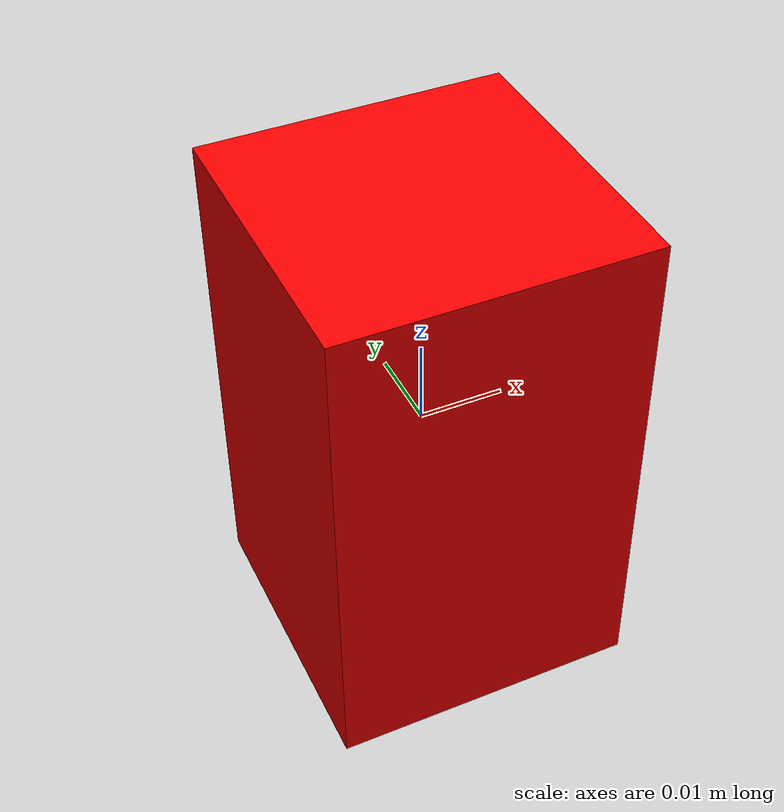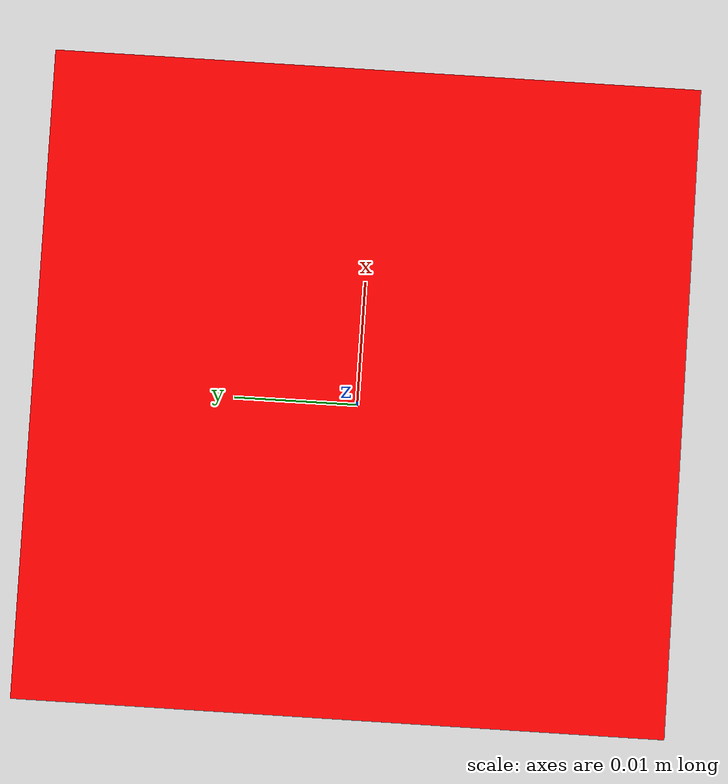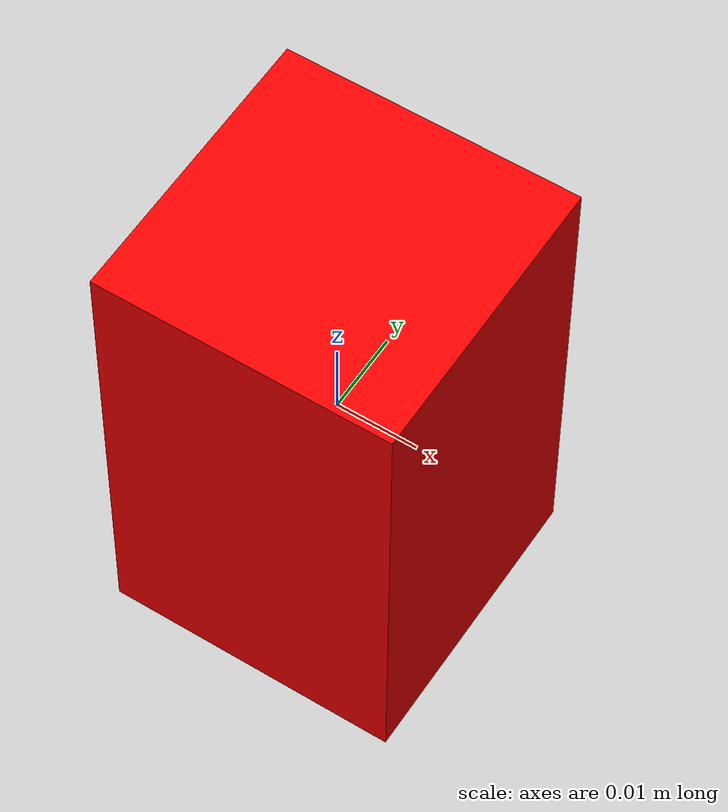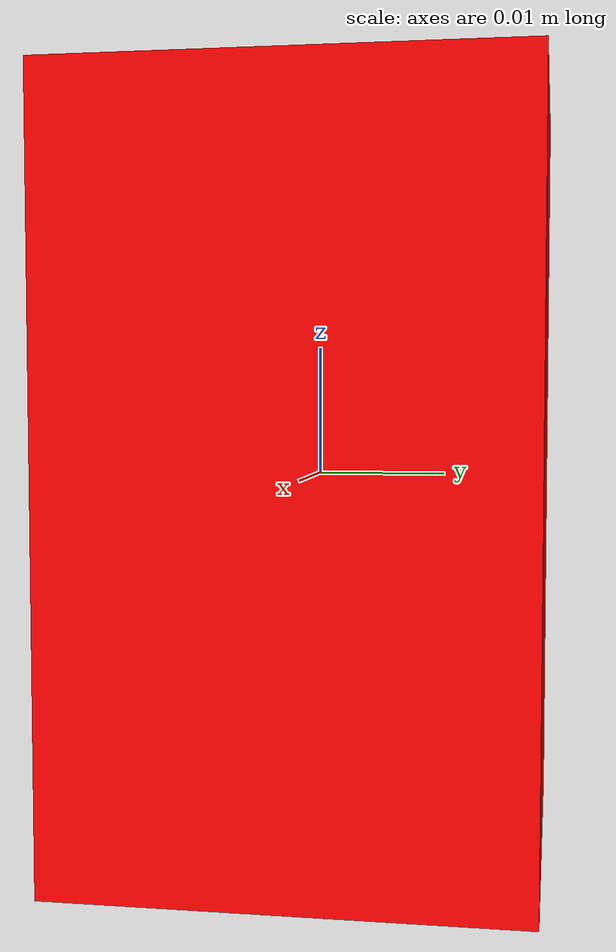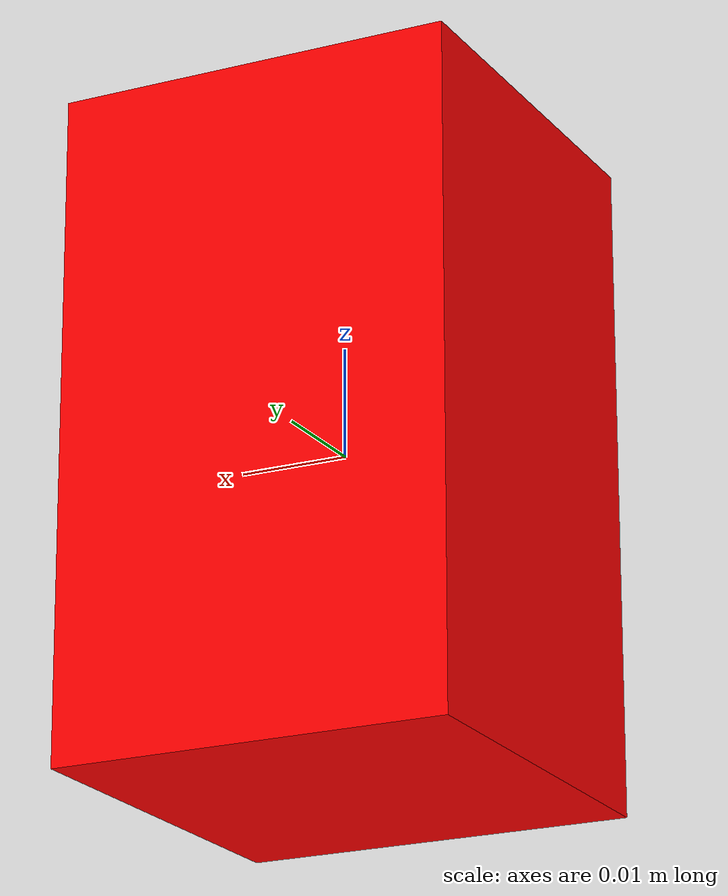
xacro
<?xml version="1.0"?>
<robot name='redbox'>

        <material name="red">
            <color rgba="1.0 0.0 0.0 1.0"/>
        </material>
        <link name="world"/>
        <joint name="redbox_joint" type="planar">
            <parent link="world"/>
            <child link="red_box"/>
        </joint>

        <link name="red_box">
            <visual>
                <origin xyz="0.0 0.0 0.0" rpy="0.0 0.0 0.0"/>
                <geometry>
                <box size="0.036 0.036 0.06"/>
                </geometry>
                <material name="red"/>
            </visual>
            <collision>
                <origin xyz="0.0 0.0 0.0" rpy="0.0 0.0 0.0"/>
                <geometry>
                <box size="0.036 0.036 0.06"/>
                </geometry>
            </collision>
            <inertial>
                <origin xyz="0.0 0.0 0.0" rpy="0.0 0.0 0.0"/>
                <mass value="0.200"/>
                <inertia ixx="0.001" ixy="0.0" ixz="0.0" iyy="0.001" iyz="0.0" izz="0.001"/>
            </inertial>
        </link>

        <gazebo reference="red_box">
            <material>Gazebo/Red</material>
            <mu1>5</mu1>
            <mu2>5</mu2>
        </gazebo>
</robot>
